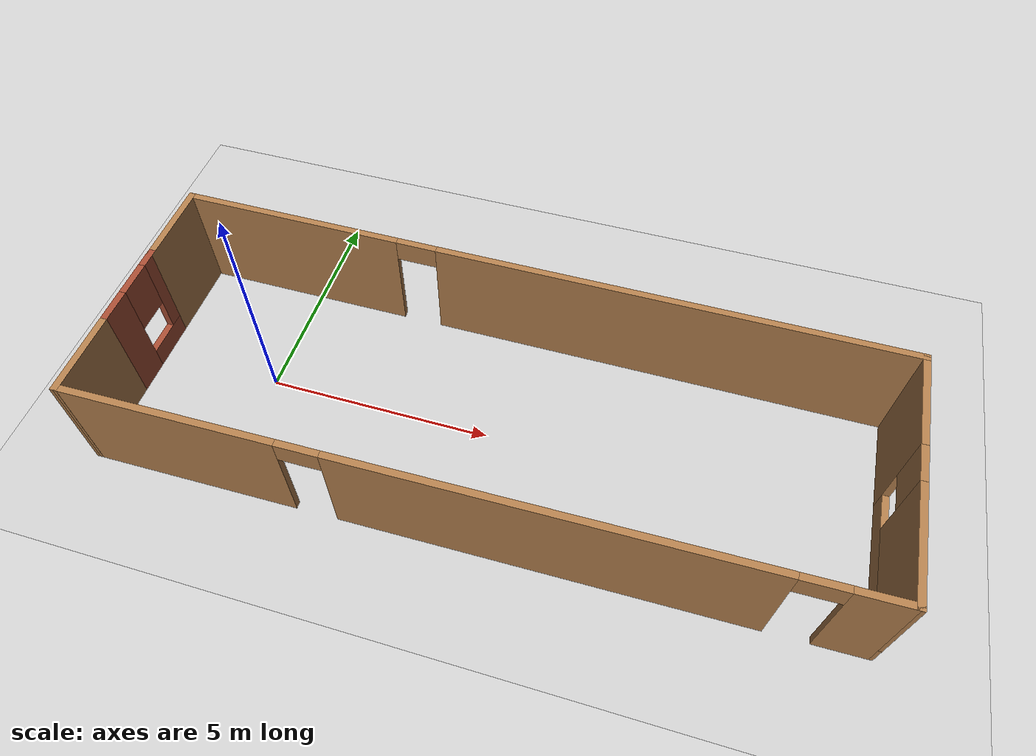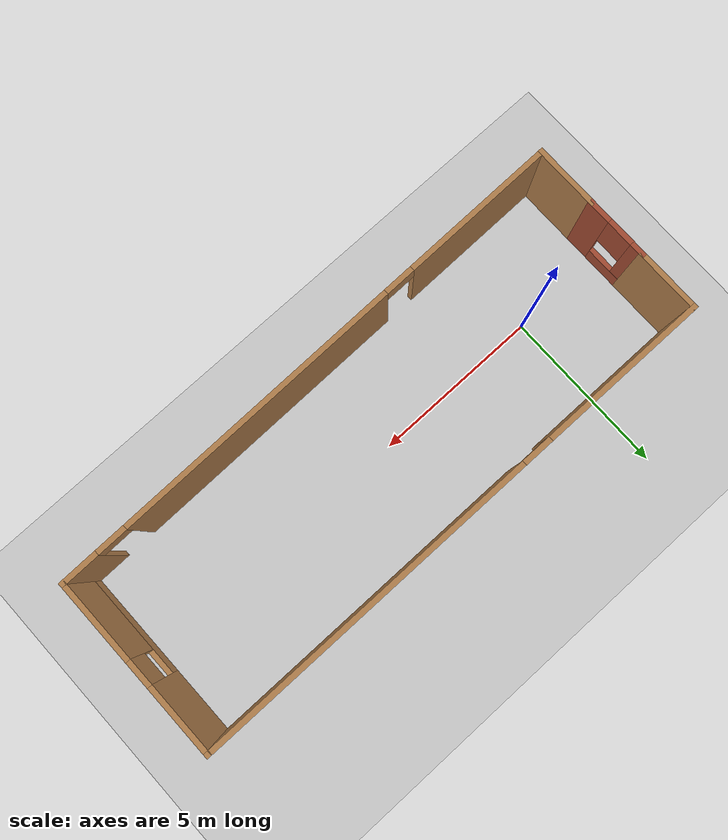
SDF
<sdf version="1.7">
 <world name="default">
  <light name="sun" type="directional">
   <pose>0 0 10 0 -0 0</pose>
   <diffuse>0.8 0.8 0.8 1</diffuse>
   <specular>0.2 0.2 0.2 1</specular>
   <attenuation>
    <range>1000</range>
    <constant>0.9</constant>
    <linear>0.01</linear>
    <quadratic>0.001</quadratic>
   </attenuation>
   <direction>-0.5 0.1 -0.9</direction>
   <spot><inner_angle>0</inner_angle><outer_angle>0</outer_angle><falloff>0</falloff></spot>
  </light>
  <model name="ground_plane">
   <static>1</static>
   <link name="link">
    <collision name="collision">
     <geometry><plane><normal>0 0 1</normal><size>100 100</size></plane></geometry>
     <surface><friction><ode><mu>100</mu><mu2>50</mu2></ode></friction></surface>
    </collision>
    <visual name="visual">
     <cast_shadows>0</cast_shadows>
     <geometry><plane><normal>0 0 1</normal><size>100 100</size></plane></geometry>
     <material>
      <script><uri>file://media/materials/scripts/gazebo.material</uri><name>Gazebo/Grey</name></script>
     </material>
    </visual>
   </link>
  </model>
  <gravity>0 0 -9.8</gravity>
  <magnetic_field>6e-06 2.3e-05 -4.2e-05</magnetic_field>
  <atmosphere type="adiabatic"/>
  <physics type="ode">
   <max_step_size>0.001</max_step_size>
   <real_time_factor>1</real_time_factor>
   <real_time_update_rate>1000</real_time_update_rate>
  </physics>
  <scene><ambient>0.4 0.4 0.4 1</ambient><background>0.7 0.7 0.7 1</background><shadows>1</shadows></scene>
  <audio><device>default</device></audio>
  <spherical_coordinates>
   <surface_model>EARTH_WGS84</surface_model>
   <latitude_deg>0</latitude_deg>
   <longitude_deg>0</longitude_deg>
   <elevation>0</elevation>
   <heading_deg>0</heading_deg>
  </spherical_coordinates>
  <model name="test">
   <pose>5.24 -0.01546 0 0 -0 0</pose>
   <link name="Wall_0">
    <collision name="Wall_0_Collision">
     <geometry><box><size>2 0.15 2.5</size></box></geometry>
     <pose>0 0 1.25 0 -0 0</pose>
    </collision>
    <visual name="Wall_0_Visual">
     <pose>0 0 1.25 0 -0 0</pose>
     <geometry><box><size>2 0.15 2.5</size></box></geometry>
     <material>
      <script><uri>file://media/materials/scripts/gazebo.material</uri><name>Gazebo/Wood</name></script>
      <ambient>1 1 1 1</ambient>
     </material>
     <meta><layer>0</layer></meta>
    </visual>
    <pose>-8.05 -1.84954 0 0 -0 1.5708</pose>
   </link>
   <link name="Wall_1">
    <pose>-8.05 0.000463 0 0 -0 1.5708</pose>
    <visual name="Wall_1_Visual_0">
     <pose>-0.630063 0 1.25 0 -0 0</pose>
     <geometry><box><size>0.739874 0.15 2.5</size></box></geometry>
     <material>
      <script><uri>file://media/materials/scripts/gazebo.material</uri><name>Gazebo/Bricks</name></script>
      <ambient>1 1 1 1</ambient>
     </material>
     <meta><layer>0</layer></meta>
    </visual>
    <collision name="Wall_1_Collision_0">
     <geometry><box><size>0.739874 0.15 2.5</size></box></geometry>
     <pose>-0.630063 0 1.25 0 -0 0</pose>
    </collision>
    <visual name="Wall_1_Visual_1">
     <pose>0.369937 0 0.25 0 -0 0</pose>
     <geometry><box><size>1.26013 0.15 0.5</size></box></geometry>
     <material>
      <script><uri>file://media/materials/scripts/gazebo.material</uri><name>Gazebo/Bricks</name></script>
      <ambient>1 1 1 1</ambient>
     </material>
     <meta><layer>0</layer></meta>
    </visual>
    <collision name="Wall_1_Collision_1">
     <geometry><box><size>1.26013 0.15 0.5</size></box></geometry>
     <pose>0.369937 0 0.25 0 -0 0</pose>
    </collision>
    <visual name="Wall_1_Visual_2">
     <pose>0.769937 0 1.5 0 -0 0</pose>
     <geometry><box><size>0.460126 0.15 2</size></box></geometry>
     <material>
      <script><uri>file://media/materials/scripts/gazebo.material</uri><name>Gazebo/Bricks</name></script>
      <ambient>1 1 1 1</ambient>
     </material>
     <meta><layer>0</layer></meta>
    </visual>
    <collision name="Wall_1_Collision_2">
     <geometry><box><size>0.460126 0.15 2</size></box></geometry>
     <pose>0.769937 0 1.5 0 -0 0</pose>
    </collision>
    <visual name="Wall_1_Visual_3">
     <pose>0.139874 0 1.9 0 -0 0</pose>
     <geometry><box><size>0.8 0.15 1.2</size></box></geometry>
     <material>
      <script><uri>file://media/materials/scripts/gazebo.material</uri><name>Gazebo/Bricks</name></script>
      <ambient>1 1 1 1</ambient>
     </material>
     <meta><layer>0</layer></meta>
    </visual>
    <collision name="Wall_1_Collision_3">
     <geometry><box><size>0.8 0.15 1.2</size></box></geometry>
     <pose>0.139874 0 1.9 0 -0 0</pose>
    </collision>
   </link>
   <link name="Wall_2">
    <collision name="Wall_2_Collision">
     <geometry><box><size>2 0.15 2.5</size></box></geometry>
     <pose>0 0 1.25 0 -0 0</pose>
    </collision>
    <visual name="Wall_2_Visual">
     <pose>0 0 1.25 0 -0 0</pose>
     <geometry><box><size>2 0.15 2.5</size></box></geometry>
     <material>
      <script><uri>file://media/materials/scripts/gazebo.material</uri><name>Gazebo/Wood</name></script>
      <ambient>1 1 1 1</ambient>
     </material>
     <meta><layer>0</layer></meta>
    </visual>
    <pose>-8.05 1.85046 0 0 -0 1.5708</pose>
   </link>
   <link name="Wall_3">
    <pose>0 2.77546 0 0 -0 0</pose>
    <visual name="Wall_3_Visual_0">
     <pose>-5.60481 0 1.25 0 -0 0</pose>
     <geometry><box><size>5.04037 0.15 2.5</size></box></geometry>
     <material>
      <script><uri>file://media/materials/scripts/gazebo.material</uri><name>Gazebo/Wood</name></script>
      <ambient>1 1 1 1</ambient>
     </material>
     <meta><layer>0</layer></meta>
    </visual>
    <collision name="Wall_3_Collision_0">
     <geometry><box><size>5.04037 0.15 2.5</size></box></geometry>
     <pose>-5.60481 0 1.25 0 -0 0</pose>
    </collision>
    <visual name="Wall_3_Visual_1">
     <pose>2.97019 0 1.25 0 -0 0</pose>
     <geometry><box><size>10.3096 0.15 2.5</size></box></geometry>
     <material>
      <script><uri>file://media/materials/scripts/gazebo.material</uri><name>Gazebo/Wood</name></script>
      <ambient>1 1 1 1</ambient>
     </material>
     <meta><layer>0</layer></meta>
    </visual>
    <collision name="Wall_3_Collision_1">
     <geometry><box><size>10.3096 0.15 2.5</size></box></geometry>
     <pose>2.97019 0 1.25 0 -0 0</pose>
    </collision>
    <visual name="Wall_3_Visual_2">
     <pose>-2.63463 0 2.25 0 -0 0</pose>
     <geometry><box><size>0.9 0.15 0.5</size></box></geometry>
     <material>
      <script><uri>file://media/materials/scripts/gazebo.material</uri><name>Gazebo/Wood</name></script>
      <ambient>1 1 1 1</ambient>
     </material>
     <meta><layer>0</layer></meta>
    </visual>
    <collision name="Wall_3_Collision_2">
     <geometry><box><size>0.9 0.15 0.5</size></box></geometry>
     <pose>-2.63463 0 2.25 0 -0 0</pose>
    </collision>
   </link>
   <link name="Wall_4">
    <pose>8.05 0.100463 0 0 -0 -1.5708</pose>
    <visual name="Wall_4_Visual_0">
     <pose>-1.66144 0 1.25 0 -0 0</pose>
     <geometry><box><size>2.17713 0.15 2.5</size></box></geometry>
     <material>
      <script><uri>file://media/materials/scripts/gazebo.material</uri><name>Gazebo/Wood</name></script>
      <ambient>1 1 1 1</ambient>
     </material>
     <meta><layer>0</layer></meta>
    </visual>
    <collision name="Wall_4_Collision_0">
     <geometry><box><size>2.17713 0.15 2.5</size></box></geometry>
     <pose>-1.66144 0 1.25 0 -0 0</pose>
    </collision>
    <visual name="Wall_4_Visual_1">
     <pose>1.08856 0 0.25 0 -0 0</pose>
     <geometry><box><size>3.32287 0.15 0.5</size></box></geometry>
     <material>
      <script><uri>file://media/materials/scripts/gazebo.material</uri><name>Gazebo/Wood</name></script>
      <ambient>1 1 1 1</ambient>
     </material>
     <meta><layer>0</layer></meta>
    </visual>
    <collision name="Wall_4_Collision_1">
     <geometry><box><size>3.32287 0.15 0.5</size></box></geometry>
     <pose>1.08856 0 0.25 0 -0 0</pose>
    </collision>
    <visual name="Wall_4_Visual_2">
     <pose>1.48856 0 1.5 0 -0 0</pose>
     <geometry><box><size>2.52287 0.15 2</size></box></geometry>
     <material>
      <script><uri>file://media/materials/scripts/gazebo.material</uri><name>Gazebo/Wood</name></script>
      <ambient>1 1 1 1</ambient>
     </material>
     <meta><layer>0</layer></meta>
    </visual>
    <collision name="Wall_4_Collision_2">
     <geometry><box><size>2.52287 0.15 2</size></box></geometry>
     <pose>1.48856 0 1.5 0 -0 0</pose>
    </collision>
    <visual name="Wall_4_Visual_3">
     <pose>-0.172875 0 1.9 0 -0 0</pose>
     <geometry><box><size>0.8 0.15 1.2</size></box></geometry>
     <material>
      <script><uri>file://media/materials/scripts/gazebo.material</uri><name>Gazebo/Wood</name></script>
      <ambient>1 1 1 1</ambient>
     </material>
     <meta><layer>0</layer></meta>
    </visual>
    <collision name="Wall_4_Collision_3">
     <geometry><box><size>0.8 0.15 1.2</size></box></geometry>
     <pose>-0.172875 0 1.9 0 -0 0</pose>
    </collision>
   </link>
   <link name="Wall_5">
    <pose>0 -2.67454 0 0 -0 -3.12917</pose>
    <visual name="Wall_5_Visual_0">
     <pose>-7.54611 0 1.25 0 -0 0</pose>
     <geometry><box><size>1.15902 0.15 2.5</size></box></geometry>
     <material>
      <script><uri>file://media/materials/scripts/gazebo.material</uri><name>Gazebo/Wood</name></script>
      <ambient>1 1 1 1</ambient>
     </material>
     <meta><layer>0</layer></meta>
    </visual>
    <collision name="Wall_5_Collision_0">
     <geometry><box><size>1.15902 0.15 2.5</size></box></geometry>
     <pose>-7.54611 0 1.25 0 -0 0</pose>
    </collision>
    <visual name="Wall_5_Visual_1">
     <pose>-1.74174 0 1.25 0 -0 0</pose>
     <geometry><box><size>8.64973 0.15 2.5</size></box></geometry>
     <material>
      <script><uri>file://media/materials/scripts/gazebo.material</uri><name>Gazebo/Wood</name></script>
      <ambient>1 1 1 1</ambient>
     </material>
     <meta><layer>0</layer></meta>
    </visual>
    <collision name="Wall_5_Collision_1">
     <geometry><box><size>8.64973 0.15 2.5</size></box></geometry>
     <pose>-1.74174 0 1.25 0 -0 0</pose>
    </collision>
    <visual name="Wall_5_Visual_2">
     <pose>5.80437 0 1.25 0 -0 0</pose>
     <geometry><box><size>4.6425 0.15 2.5</size></box></geometry>
     <material>
      <script><uri>file://media/materials/scripts/gazebo.material</uri><name>Gazebo/Wood</name></script>
      <ambient>1 1 1 1</ambient>
     </material>
     <meta><layer>0</layer></meta>
    </visual>
    <collision name="Wall_5_Collision_2">
     <geometry><box><size>4.6425 0.15 2.5</size></box></geometry>
     <pose>5.80437 0 1.25 0 -0 0</pose>
    </collision>
    <visual name="Wall_5_Visual_3">
     <pose>-6.5166 0 2.25 0 -0 0</pose>
     <geometry><box><size>0.9 0.15 0.5</size></box></geometry>
     <material>
      <script><uri>file://media/materials/scripts/gazebo.material</uri><name>Gazebo/Wood</name></script>
      <ambient>1 1 1 1</ambient>
     </material>
     <meta><layer>0</layer></meta>
    </visual>
    <collision name="Wall_5_Collision_3">
     <geometry><box><size>0.9 0.15 0.5</size></box></geometry>
     <pose>-6.5166 0 2.25 0 -0 0</pose>
    </collision>
    <visual name="Wall_5_Visual_4">
     <pose>3.03312 0 2.25 0 -0 0</pose>
     <geometry><box><size>0.9 0.15 0.5</size></box></geometry>
     <material>
      <script><uri>file://media/materials/scripts/gazebo.material</uri><name>Gazebo/Wood</name></script>
      <ambient>1 1 1 1</ambient>
     </material>
     <meta><layer>0</layer></meta>
    </visual>
    <collision name="Wall_5_Collision_4">
     <geometry><box><size>0.9 0.15 0.5</size></box></geometry>
     <pose>3.03312 0 2.25 0 -0 0</pose>
    </collision>
   </link>
   <static>1</static>
  </model>
 </world>
</sdf>
